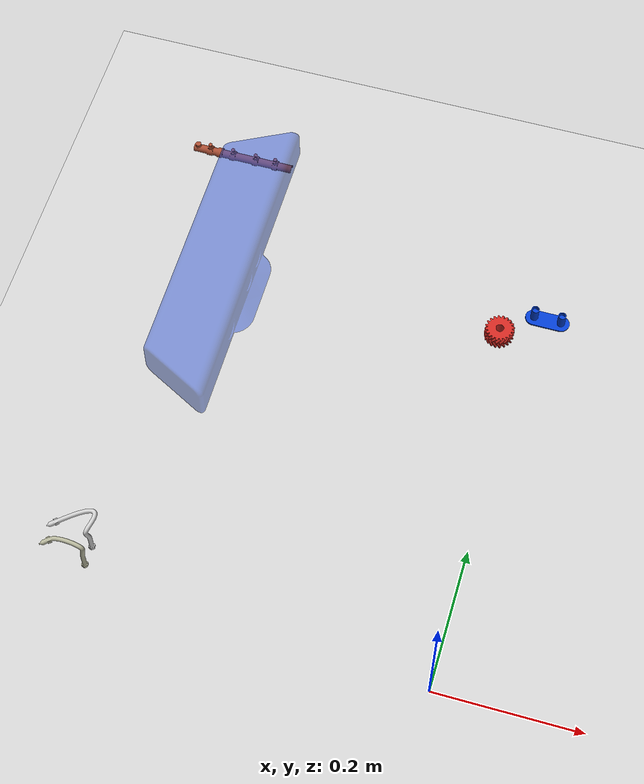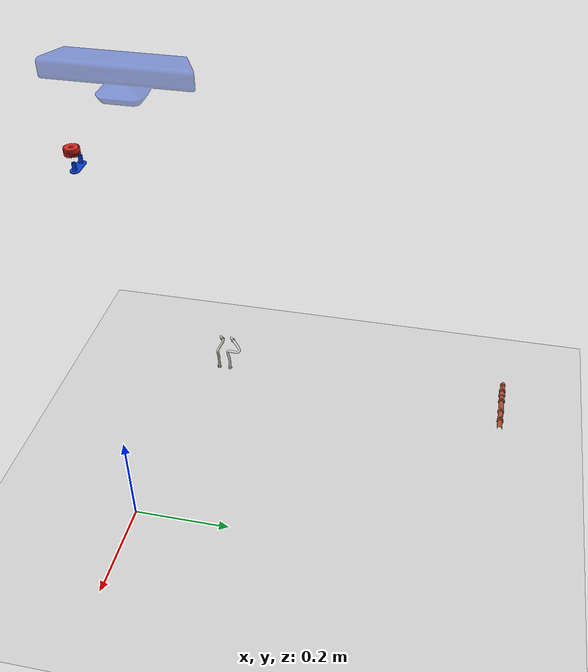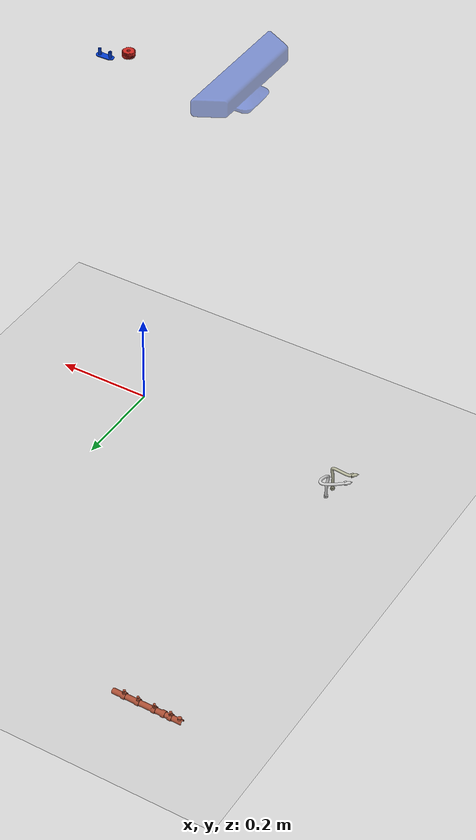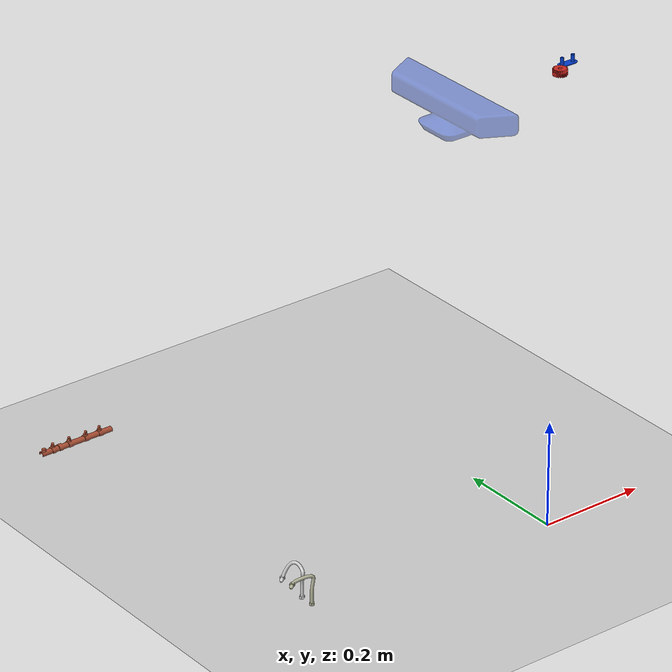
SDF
<sdf version="1.6">
 <world name="default">
  <light name="sun" type="directional">
   <pose>0 0 10 0 -0 0</pose>
   <diffuse>0.5 0.7 0.3 1</diffuse>
   <specular>0.2 0.3 0.7 1</specular>
   <attenuation>
    <range>500</range>
    <constant>0.5</constant>
    <linear>0.03</linear>
    <quadratic>0.01</quadratic>
   </attenuation>
   <direction>-0.25 0.45 -5</direction>
  </light>
  <model name="ground_plane">
   <static>1</static>
   <link name="link">
    <collision name="collision">
     <geometry><plane><normal>0 0 1</normal><size>100 100</size></plane></geometry>
     <surface><friction><ode><mu>100</mu><mu2>50</mu2></ode></friction></surface>
    </collision>
    <visual name="visual">
     <cast_shadows>0</cast_shadows>
     <geometry><plane><normal>0 0 1</normal><size>100 100</size></plane></geometry>
     <material>
      <script><uri>file://media/materials/scripts/gazebo.material</uri><name>Gazebo/Grey</name></script>
     </material>
    </visual>
   </link>
  </model>
  <gravity>0 0 -9.8</gravity>
  <magnetic_field>6e-06 2.3e-05 -4.2e-05</magnetic_field>
  <atmosphere type="adiabatic"/>
  <physics name="default_physics" default="0" type="ode">
   <max_step_size>0.001</max_step_size>
   <real_time_factor>1</real_time_factor>
   <real_time_update_rate>1000</real_time_update_rate>
  </physics>
  <scene><ambient>0.4 0.4 0.4 1</ambient><background>0.7 0.7 0.7 1</background><shadows>1</shadows></scene>
  <spherical_coordinates>
   <surface_model>EARTH_WGS84</surface_model>
   <latitude_deg>0</latitude_deg>
   <longitude_deg>0</longitude_deg>
   <elevation>0</elevation>
   <heading_deg>0</heading_deg>
  </spherical_coordinates>
  <light name="user_point_light_0" type="point">
   <pose>0 0 2 0 -0 0</pose>
   <diffuse>0.5 0.5 0.5 1</diffuse>
   <specular>0.1 0.1 0.1 1</specular>
   <attenuation>
    <range>20</range>
    <constant>0.5</constant>
    <linear>0.01</linear>
    <quadratic>0.001</quadratic>
   </attenuation>
   <cast_shadows>0</cast_shadows>
   <direction>0 0 -1</direction>
  </light>
  <model name="kinect_ros">
   <pose>-0.20 0 0.87 0 -0 0</pose>
   <link name="link">
    <inertial><mass>0.1</mass></inertial>
    <collision name="collision"><geometry><box><size>0.073 0.276 0.072</size></box></geometry></collision>
    <visual name="visual">
     <material>
      <script><name>Gazebo/BlueTransparent</name><uri>file://media/materials/scripts/gazebo.material</uri></script>
     </material>
     <geometry><mesh><uri>model://kinect/meshes/kinect.dae</uri></mesh></geometry>
    </visual>
    <sensor name="camera1" type="depth">
     <update_rate>20</update_rate>
     <camera name="__default__">
      <horizontal_fov>1.0472</horizontal_fov>
      <image><width>640</width><height>480</height><format>R8G8B8</format></image>
      <clip><near>0.02</near><far>3</far></clip>
     </camera>
     <plugin name="depth_camera1_plugin" filename="libgazebo_ros_openni_kinect.so">
      <baseline>0.2</baseline>
      <alwaysOn>true</alwaysOn>
      <updateRate>0.0</updateRate>
      <cameraName>kinect1</cameraName>
      <imageTopicName>color/image_raw</imageTopicName>
      <cameraInfoTopicName>color/camera_info</cameraInfoTopicName>
      <depthImageTopicName>depth/image_raw</depthImageTopicName>
      <depthImageCameraInfoTopicName>color/camera_info</depthImageCameraInfoTopicName>
      <pointCloudTopicName>depth/points</pointCloudTopicName>
      <frameName>kinect1_optical_link</frameName>
      <pointCloudCutoff>0.03</pointCloudCutoff>
      <pointCloudCutoffMax>3</pointCloudCutoffMax>
      <distortionK1>0</distortionK1>
      <distortionK2>0</distortionK2>
      <distortionK3>0</distortionK3>
      <distortionT1>0</distortionT1>
      <distortionT2>0</distortionT2>
      <CxPrime>0</CxPrime>
      <Cx>0</Cx>
      <Cy>0</Cy>
      <focalLength>0</focalLength>
      <hackBaseline>0</hackBaseline>
     </plugin>
    </sensor>
   </link>
   <static>1</static>
   <allow_auto_disable>0</allow_auto_disable>
  </model>
  <include>
   <uri>model://common-line</uri>
   <name>common-line</name>
   <pose>-0.475 0.73 0 0 0 0</pose>
   <static>1</static>
  </include>
  <include>
   <uri>model://fuel-line1</uri>
   <name>fuel-line1</name>
   <pose>-0.475 0.07 0 0 0 0</pose>
   <static>1</static>
  </include>
  <include>
   <uri>model://fuel-line2</uri>
   <name>fuel-line2</name>
   <pose>-0.475 0.043 0 0 0 0</pose>
   <static>1</static>
  </include>
  <include>
   <uri>model://left_gear</uri>
   <name>left_gear</name>
   <pose>0 0 0.84 0 0 0</pose>
   <static>1</static>
  </include>
  <include>
   <uri>model://bottom_casing</uri>
   <name>bottom_casing</name>
   <pose>0.03 0.03 0.84 0 0 0</pose>
   <static>1</static>
  </include>
 </world>
</sdf>

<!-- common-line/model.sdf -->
<sdf version="1.5">
  <model name="common-line">
    <static>false</static>
    <link name="link">
      <collision name="collision">
        <geometry>
          <box>
            <size>1.70 0.50 0.57</size>
          </box>
        </geometry>

      </collision>
      <visual name="visual">
        <cast_shadows>true</cast_shadows>
        <geometry>
          <mesh>
            <scale>0.001 0.001 0.001</scale>
            <uri>model://common-line/meshes/common-line.dae</uri>
          </mesh>s
        </geometry>
        <material>
          <script>
           <uri>file://media/materials/scripts/gazebo.material</uri>
           <name>Gazebo/Bricks</name>
          </script>
        </material>
      </visual>
    </link>
  </model>
</sdf>

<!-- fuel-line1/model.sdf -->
<sdf version="1.5">
  <model name="fuel-line1">
    <static>false</static>
    <link name="link">
      <collision name="collision">
        <geometry>
          <box>
            <size>1.70 0.50 0.57</size>
          </box>
        </geometry>
      </collision>
      <visual name="visual">
        <cast_shadows>true</cast_shadows>
        <geometry>
          <mesh>
            <scale>0.001 0.001 0.001</scale>
            <uri>model://fuel-line1/meshes/fuel-line1.dae</uri>
          </mesh>
        </geometry>
        <material>
          <script>
           <uri>file://media/materials/scripts/gazebo.material</uri>
           <name>Gazebo/Runway</name>
          </script>
        </material>
      </visual>
    </link>
  </model>
</sdf>

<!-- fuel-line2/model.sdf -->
<sdf version="1.5">
  <model name="fuel-line2">
    <static>false</static>
    <link name="link">
      <collision name="collision">
        <geometry>
          <box>
            <size>1.70 0.50 0.57</size>
          </box>
        </geometry>
      </collision>
      <visual name="visual">
        <cast_shadows>true</cast_shadows>
        <geometry>
          <mesh>
            <scale>0.001 0.001 0.001</scale>
            <uri>model://fuel-line2/meshes/fuel-line2.dae</uri>
          </mesh>
        </geometry>
        <material>
          <script>
           <uri>file://media/materials/scripts/gazebo.material</uri>
           <name>Gazebo/Residential</name>
          </script>
        </material>
      </visual>
    </link>
  </model>
</sdf>

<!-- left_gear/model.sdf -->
<sdf version="1.5">
  <model name="left_gear">
    <static>true</static>
    <link name="link">
      <collision name="collision">
        <geometry>
          <mesh>
            <scale>1 1 1</scale>
            <uri>model://left_gear/meshes/left_gear.dae</uri>
          </mesh>
        </geometry>
      </collision>
      <visual name="visual">
        <geometry>
          <mesh>
            <scale>1 1 1</scale>
            <uri>model://left_gear/meshes/left_gear.dae</uri>
          </mesh>
        </geometry>
      </visual>
    </link>
  </model>
</sdf>

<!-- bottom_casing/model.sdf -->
<sdf version="1.5">
  <model name="bottom_casing">
    <static>false</static>
    <link name="link">
      <collision name="collision">
        <geometry>
          <mesh>
            <scale>1 1 1</scale>
            <uri>model://bottom_casing/meshes/bottom_casing.stl</uri>
          </mesh>
        </geometry>
      </collision>
      <visual name="visual">
        <geometry>
          <mesh>
            <scale>1 1 1</scale>
            <uri>model://bottom_casing/meshes/bottom_casing.dae</uri>
          </mesh>
        </geometry>
      </visual>
    </link>
  </model>
</sdf>
